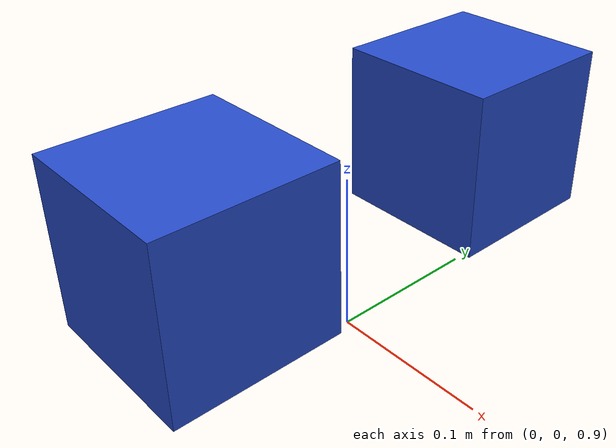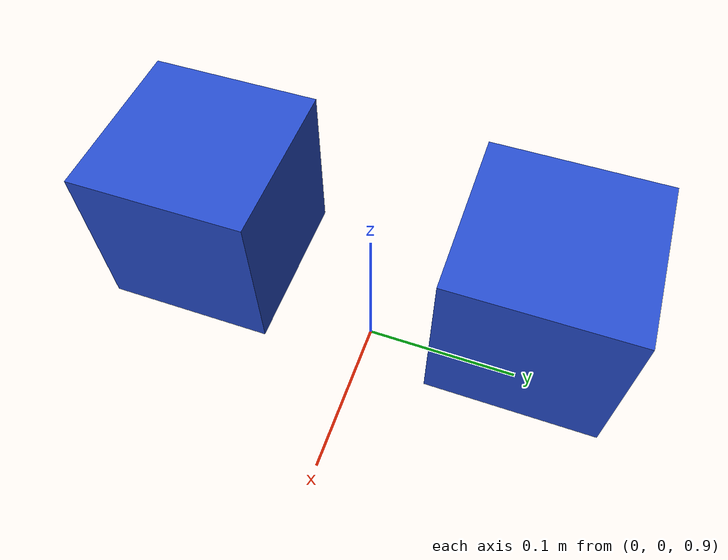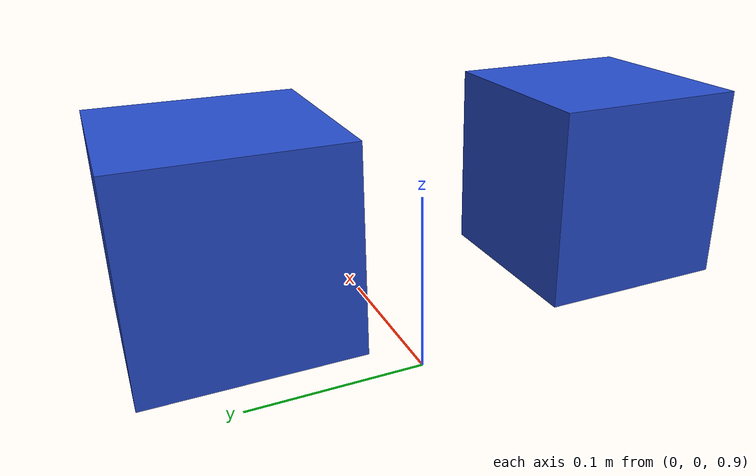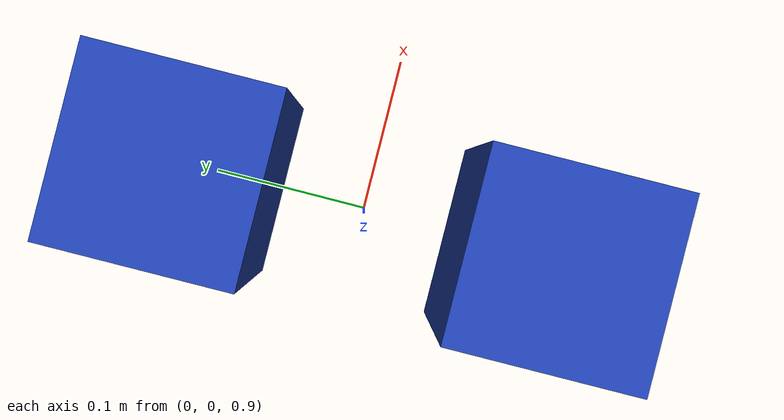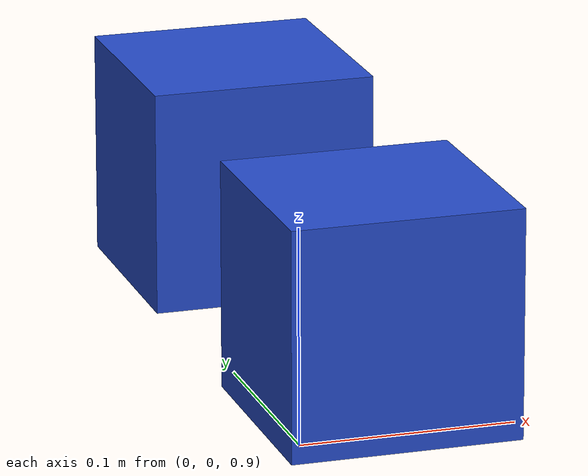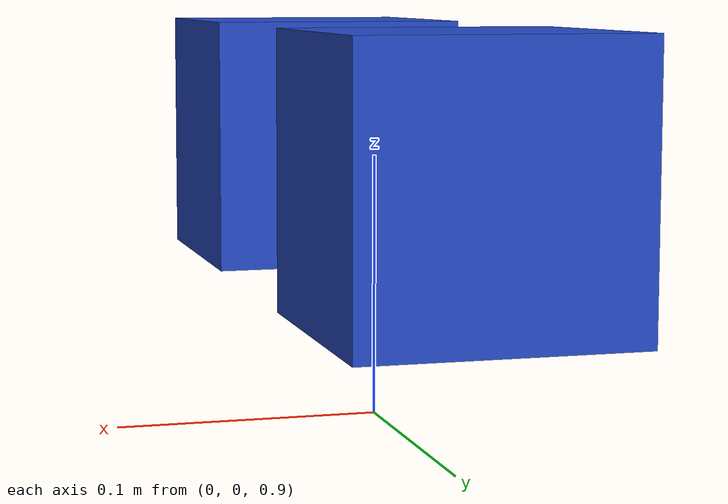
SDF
<?xml version="1.0" ?>
<sdf version="1.4">
  <model name="robot">
    <link name="root">
      <pose>0 0 1.0 0 0 0</pose>
    </link>
    <link name="gripper_l">
      <!-- multi-block pose -->
      <!-- one-block pose -->
      <pose>0 -0.1 1.0 0 0 0</pose>
      <gravity>0</gravity>
      <inertial>
        <pose>0 0 0 0 0 0</pose>
        <inertia>
          <ixx>6.667</ixx>
          <ixy>0</ixy>
          <ixz>0</ixz>
          <iyy>6.667</iyy>
          <iyz>0</iyz>
          <izz>6.667</izz>
        </inertia>
        <mass>1.0</mass>
      </inertial>
      <collision name="gripper_l_col">
        <pose>0 0 0 0 0 0</pose>
        <geometry>
          <box>
            <size>0.1 0.1 0.1</size>
          </box>
        </geometry>
        <surface>
          <friction>
            <ode>
              <mu>10.0</mu>
              <mu2>10.0</mu2>
              <fdir1>0 0 0</fdir1>
              <slip1>0.0</slip1>
              <slip2>0.0</slip2>
            </ode>
          </friction>
        </surface>
      </collision>
      <visual name="gripper_l_vis">
        <pose>0 0 0 0 0 0</pose>
        <geometry>
          <box>
            <size>0.1 0.1 0.1</size>
          </box>
        </geometry>
        <material>
          <script>
            <uri>file://media/materials/scripts/gazebo.material</uri>
            <name>Gazebo/Blue</name>
          </script>
        </material>
      </visual>
    </link>

    <link name="gripper_r">
      <!-- multi-block pose -->
      <!-- one-block pose -->
      <pose>0 0.1 1.0 0 0 0</pose>
      <gravity>0</gravity>
      <inertial>
        <pose>0 0 0 0 0 0</pose>
        <inertia>
          <ixx>6.667</ixx>
          <ixy>0</ixy>
          <ixz>0</ixz>
          <iyy>6.667</iyy>
          <iyz>0</iyz>
          <izz>6.667</izz>
        </inertia>
        <mass>1.0</mass>
      </inertial>
      <collision name="gripper_r_col">
        <pose>0 0 0 0 0 0</pose>
        <geometry>
          <box>
            <size>0.1 0.1 0.1</size>
          </box>
        </geometry>
        <surface>
          <friction>
            <ode>
              <mu>10.0</mu>
              <mu2>10.0</mu2>
              <fdir1>0 0 0</fdir1>
              <slip1>0.0</slip1>
              <slip2>0.0</slip2>
            </ode>
          </friction>
        </surface>
      </collision>
      <visual name="gripper_r_vis">
        <pose>0 0 0 0 0 0</pose>
        <geometry>
          <box>
            <size>0.1 0.1 0.1</size>
          </box>
        </geometry>
        <material>
          <script>
            <uri>file://media/materials/scripts/gazebo.material</uri>
            <name>Gazebo/Blue</name>
          </script>
        </material>
      </visual>
    </link>

    <joint name="fixed" type="revolute">
      <parent>world</parent>
      <child>root</child>
      <pose>0 0 0 0 0 0</pose>
      <axis>
        <xyz>0 0 1</xyz>
        <limit>
          <upper>0</upper>
          <lower>0</lower>
        </limit>
        <dynamics>
          <damping>1.0</damping>
        </dynamics>
      </axis>
      <physics>
        <ode>
          <cfm_damping>1</cfm_damping>
        </ode>
      </physics>
    </joint>

    <joint name="actuator_l" type="prismatic">
      <parent>root</parent>
      <child>gripper_l</child>
      <axis>
        <dynamics>
          <damping>0.0</damping>
          <friction>0.0</friction>
        </dynamics>
        <xyz>0 1 0</xyz>
      </axis>
    </joint>

    <joint name="actuator_r" type="prismatic">
      <parent>root</parent>
      <child>gripper_r</child>
      <axis>
        <dynamics>
          <damping>0.0</damping>
          <friction>0.0</friction>
        </dynamics>
        <xyz>0 1 0</xyz>
      </axis>
    </joint>

    <plugin name='block-grasp-controller' filename='libblock-grasp-controller.so'>
    </plugin>

  </model>
</sdf>
